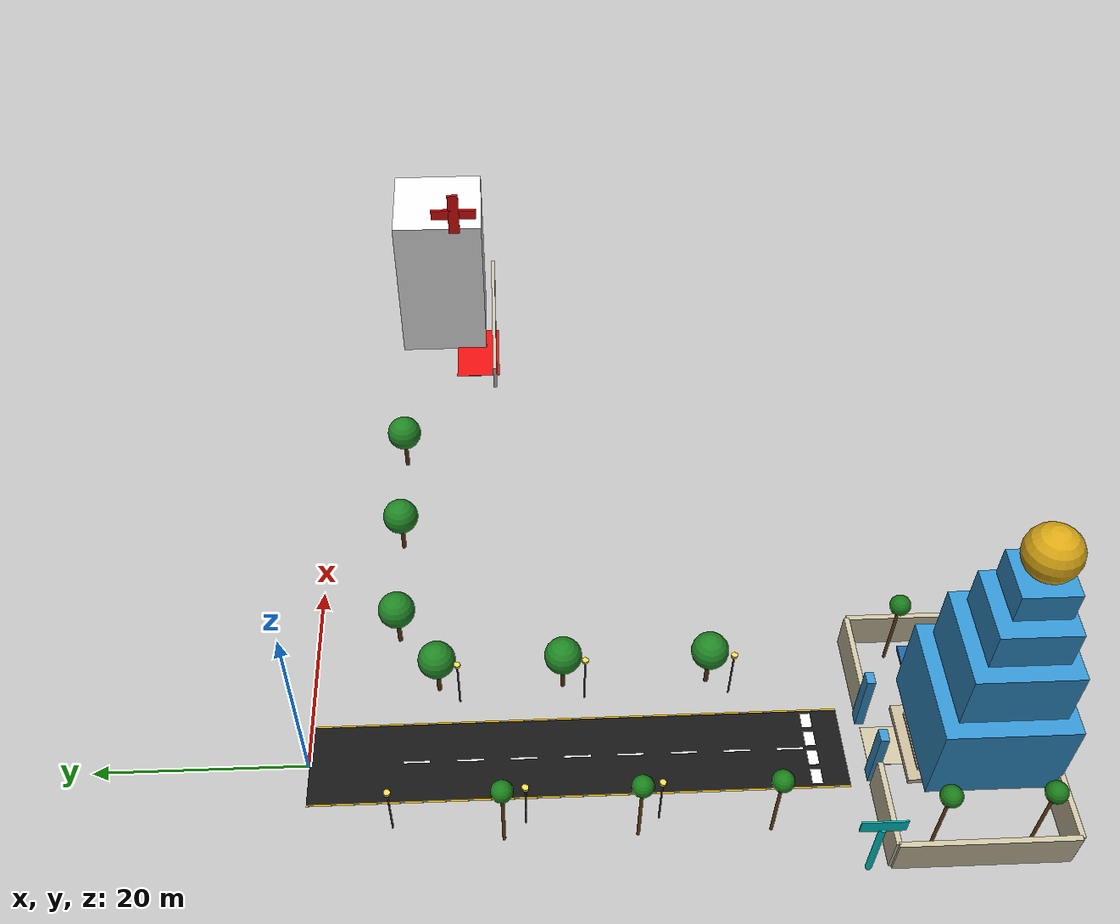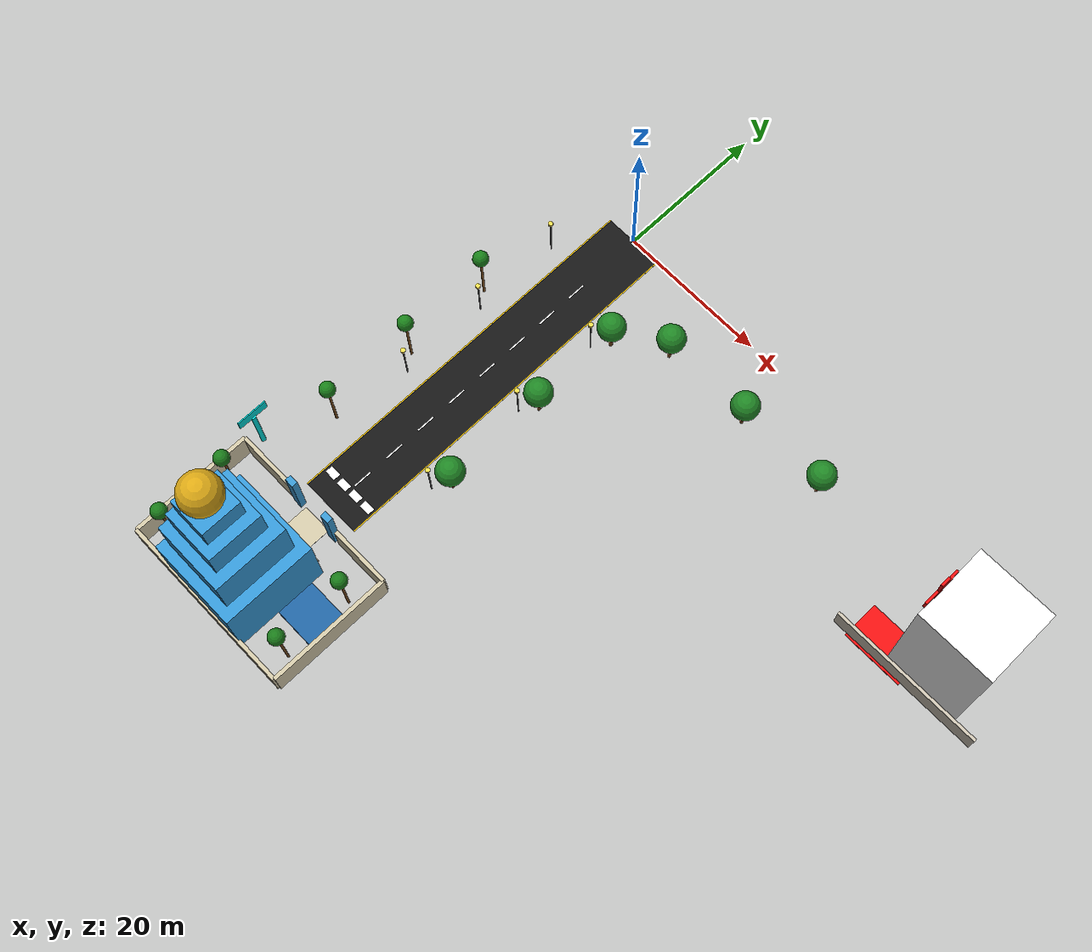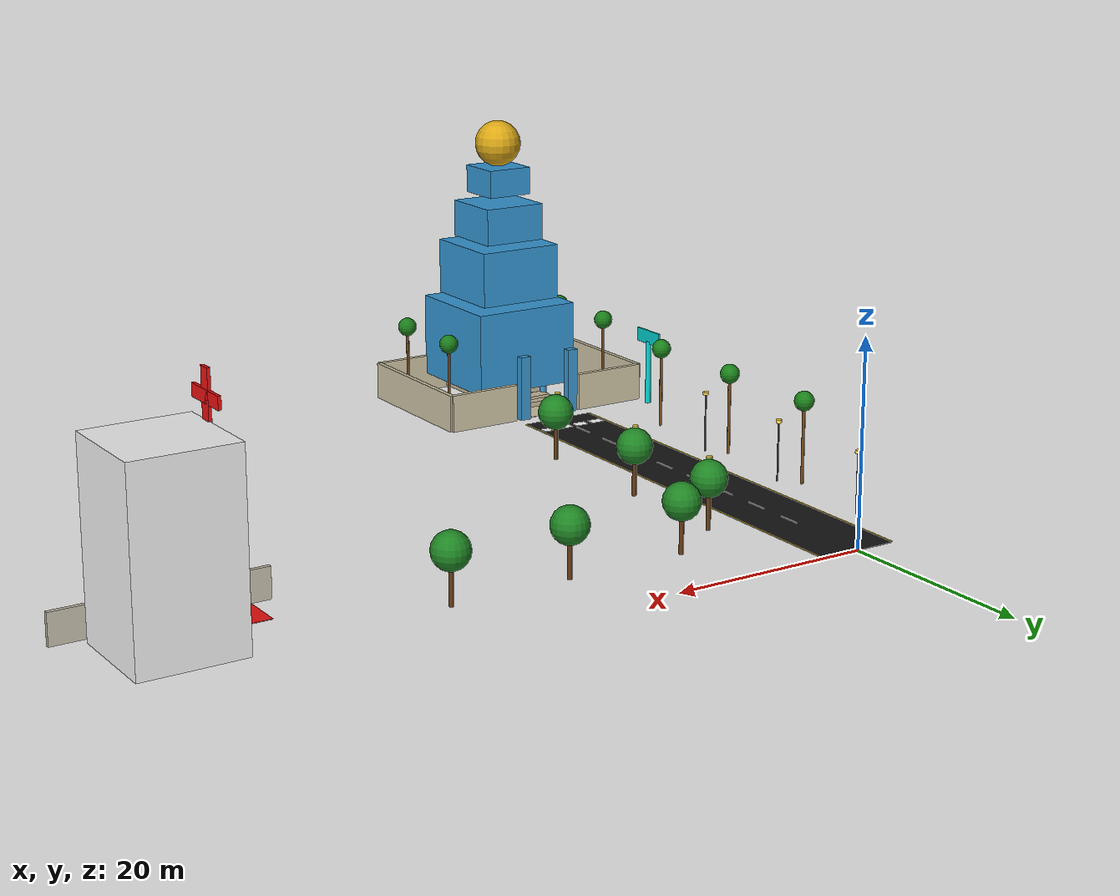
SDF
<sdf version="1.6">
 <world name="srm_campus">
  <model name="road_S">
   <static>true</static>
   <pose>0 -25 0.03 0 0 0</pose>
   <link name="link">
    <collision name="col">
     <geometry><box><size>8.0 50.0 0.06</size></box></geometry>
     <surface><friction><ode><mu>1.0</mu><mu2>1.0</mu2></ode></friction></surface>
    </collision>
    <visual name="vis">
     <geometry><box><size>8.0 50.0 0.06</size></box></geometry>
     <material><ambient>0.06 0.06 0.06 1</ambient><diffuse>0.08 0.08 0.08 1</diffuse></material>
    </visual>
   </link>
  </model>
  <model name="el_SL">
   <static>true</static>
   <pose>-4.1 -25 0.065 0 0 0</pose>
   <link name="l">
    <collision name="c"><geometry><box><size>0.15 50 0.01</size></box></geometry></collision>
    <visual name="v">
     <geometry><box><size>0.15 50 0.01</size></box></geometry>
     <material><ambient>0.95 0.75 0.0 1</ambient><diffuse>0.95 0.75 0.0 1</diffuse></material>
    </visual>
   </link>
  </model>
  <model name="el_SR">
   <static>true</static>
   <pose>4.1 -25 0.065 0 0 0</pose>
   <link name="l">
    <collision name="c"><geometry><box><size>0.15 50 0.01</size></box></geometry></collision>
    <visual name="v">
     <geometry><box><size>0.15 50 0.01</size></box></geometry>
     <material><ambient>0.95 0.75 0.0 1</ambient><diffuse>0.95 0.75 0.0 1</diffuse></material>
    </visual>
   </link>
  </model>
  <model name="ws02">
   <static>true</static>
   <pose>0 -10 0.07 0 0 0</pose>
   <link name="l">
    <collision name="c"><geometry><box><size>0.20 2.5 0.01</size></box></geometry></collision>
    <visual name="v">
     <geometry><box><size>0.20 2.5 0.01</size></box></geometry>
     <material><ambient>1 1 1 1</ambient><diffuse>1 1 1 1</diffuse></material>
    </visual>
   </link>
  </model>
  <model name="ws03">
   <static>true</static>
   <pose>0 -15 0.07 0 0 0</pose>
   <link name="l">
    <collision name="c"><geometry><box><size>0.20 2.5 0.01</size></box></geometry></collision>
    <visual name="v">
     <geometry><box><size>0.20 2.5 0.01</size></box></geometry>
     <material><ambient>1 1 1 1</ambient><diffuse>1 1 1 1</diffuse></material>
    </visual>
   </link>
  </model>
  <model name="ws04">
   <static>true</static>
   <pose>0 -20 0.07 0 0 0</pose>
   <link name="l">
    <collision name="c"><geometry><box><size>0.20 2.5 0.01</size></box></geometry></collision>
    <visual name="v">
     <geometry><box><size>0.20 2.5 0.01</size></box></geometry>
     <material><ambient>1 1 1 1</ambient><diffuse>1 1 1 1</diffuse></material>
    </visual>
   </link>
  </model>
  <model name="ws05">
   <static>true</static>
   <pose>0 -25 0.07 0 0 0</pose>
   <link name="l">
    <collision name="c"><geometry><box><size>0.20 2.5 0.01</size></box></geometry></collision>
    <visual name="v">
     <geometry><box><size>0.20 2.5 0.01</size></box></geometry>
     <material><ambient>1 1 1 1</ambient><diffuse>1 1 1 1</diffuse></material>
    </visual>
   </link>
  </model>
  <model name="ws06">
   <static>true</static>
   <pose>0 -30 0.07 0 0 0</pose>
   <link name="l">
    <collision name="c"><geometry><box><size>0.20 2.5 0.01</size></box></geometry></collision>
    <visual name="v">
     <geometry><box><size>0.20 2.5 0.01</size></box></geometry>
     <material><ambient>1 1 1 1</ambient><diffuse>1 1 1 1</diffuse></material>
    </visual>
   </link>
  </model>
  <model name="ws07">
   <static>true</static>
   <pose>0 -35 0.07 0 0 0</pose>
   <link name="l">
    <collision name="c"><geometry><box><size>0.20 2.5 0.01</size></box></geometry></collision>
    <visual name="v">
     <geometry><box><size>0.20 2.5 0.01</size></box></geometry>
     <material><ambient>1 1 1 1</ambient><diffuse>1 1 1 1</diffuse></material>
    </visual>
   </link>
  </model>
  <model name="ws08">
   <static>true</static>
   <pose>0 -40 0.07 0 0 0</pose>
   <link name="l">
    <collision name="c"><geometry><box><size>0.20 2.5 0.01</size></box></geometry></collision>
    <visual name="v">
     <geometry><box><size>0.20 2.5 0.01</size></box></geometry>
     <material><ambient>1 1 1 1</ambient><diffuse>1 1 1 1</diffuse></material>
    </visual>
   </link>
  </model>
  <model name="ws09">
   <static>true</static>
   <pose>0 -45 0.07 0 0 0</pose>
   <link name="l">
    <collision name="c"><geometry><box><size>0.20 2.5 0.01</size></box></geometry></collision>
    <visual name="v">
     <geometry><box><size>0.20 2.5 0.01</size></box></geometry>
     <material><ambient>1 1 1 1</ambient><diffuse>1 1 1 1</diffuse></material>
    </visual>
   </link>
  </model>
  <model name="zeb_tem_1">
   <static>true</static>
   <pose>-3 -47 0.07 0 0 0</pose>
   <link name="l">
    <collision name="c"><geometry><box><size>1.5 1.0 0.01</size></box></geometry></collision>
    <visual name="v">
     <geometry><box><size>1.5 1.0 0.01</size></box></geometry>
     <material><ambient>1 1 1 1</ambient><diffuse>1 1 1 1</diffuse></material>
    </visual>
   </link>
  </model>
  <model name="zeb_tem_2">
   <static>true</static>
   <pose>-1 -47 0.07 0 0 0</pose>
   <link name="l">
    <collision name="c"><geometry><box><size>1.5 1.0 0.01</size></box></geometry></collision>
    <visual name="v">
     <geometry><box><size>1.5 1.0 0.01</size></box></geometry>
     <material><ambient>1 1 1 1</ambient><diffuse>1 1 1 1</diffuse></material>
    </visual>
   </link>
  </model>
  <model name="zeb_tem_3">
   <static>true</static>
   <pose>1 -47 0.07 0 0 0</pose>
   <link name="l">
    <collision name="c"><geometry><box><size>1.5 1.0 0.01</size></box></geometry></collision>
    <visual name="v">
     <geometry><box><size>1.5 1.0 0.01</size></box></geometry>
     <material><ambient>1 1 1 1</ambient><diffuse>1 1 1 1</diffuse></material>
    </visual>
   </link>
  </model>
  <model name="zeb_tem_4">
   <static>true</static>
   <pose>3 -47 0.07 0 0 0</pose>
   <link name="l">
    <collision name="c"><geometry><box><size>1.5 1.0 0.01</size></box></geometry></collision>
    <visual name="v">
     <geometry><box><size>1.5 1.0 0.01</size></box></geometry>
     <material><ambient>1 1 1 1</ambient><diffuse>1 1 1 1</diffuse></material>
    </visual>
   </link>
  </model>
  <model name="sl_sl1">
   <static>true</static>
   <pose>-6.5  -8 3 0 0 0</pose>
   <link name="l">
    <collision name="c">
     <geometry><cylinder><radius>0.08</radius><length>6</length></cylinder></geometry>
    </collision>
    <visual name="trunk">
     <geometry><cylinder><radius>0.08</radius><length>6</length></cylinder></geometry>
     <material><ambient>0.4 0.4 0.4 1</ambient><diffuse>0.4 0.4 0.4 1</diffuse></material>
    </visual>
   </link>
  </model>
  <model name="sl_sl1h">
   <static>true</static>
   <pose>-6.5  -8 6.2 0 0 0</pose>
   <link name="l">
    <collision name="c">
     <geometry><cylinder><radius>0.3</radius><length>0.3</length></cylinder></geometry>
    </collision>
    <visual name="v">
     <geometry><cylinder><radius>0.3</radius><length>0.3</length></cylinder></geometry>
     <material><ambient>0.95 0.75 0.2 1</ambient><diffuse>1.0 0.85 0.3 1</diffuse></material>
    </visual>
   </link>
  </model>
  <model name="sl_sl2">
   <static>true</static>
   <pose>-6.5 -20 3 0 0 0</pose>
   <link name="l">
    <collision name="c">
     <geometry><cylinder><radius>0.08</radius><length>6</length></cylinder></geometry>
    </collision>
    <visual name="trunk">
     <geometry><cylinder><radius>0.08</radius><length>6</length></cylinder></geometry>
     <material><ambient>0.4 0.4 0.4 1</ambient><diffuse>0.4 0.4 0.4 1</diffuse></material>
    </visual>
   </link>
  </model>
  <model name="sl_sl2h">
   <static>true</static>
   <pose>-6.5 -20 6.2 0 0 0</pose>
   <link name="l">
    <collision name="c">
     <geometry><cylinder><radius>0.3</radius><length>0.3</length></cylinder></geometry>
    </collision>
    <visual name="v">
     <geometry><cylinder><radius>0.3</radius><length>0.3</length></cylinder></geometry>
     <material><ambient>0.95 0.75 0.2 1</ambient><diffuse>1.0 0.85 0.3 1</diffuse></material>
    </visual>
   </link>
  </model>
  <model name="sl_sl3">
   <static>true</static>
   <pose>-6.5 -32 3 0 0 0</pose>
   <link name="l">
    <collision name="c">
     <geometry><cylinder><radius>0.08</radius><length>6</length></cylinder></geometry>
    </collision>
    <visual name="trunk">
     <geometry><cylinder><radius>0.08</radius><length>6</length></cylinder></geometry>
     <material><ambient>0.4 0.4 0.4 1</ambient><diffuse>0.4 0.4 0.4 1</diffuse></material>
    </visual>
   </link>
  </model>
  <model name="sl_sl3h">
   <static>true</static>
   <pose>-6.5 -32 6.2 0 0 0</pose>
   <link name="l">
    <collision name="c">
     <geometry><cylinder><radius>0.3</radius><length>0.3</length></cylinder></geometry>
    </collision>
    <visual name="v">
     <geometry><cylinder><radius>0.3</radius><length>0.3</length></cylinder></geometry>
     <material><ambient>0.95 0.75 0.2 1</ambient><diffuse>1.0 0.85 0.3 1</diffuse></material>
    </visual>
   </link>
  </model>
  <model name="sl_sr1">
   <static>true</static>
   <pose>6.5 -14 3 0 0 0</pose>
   <link name="l">
    <collision name="c">
     <geometry><cylinder><radius>0.08</radius><length>6</length></cylinder></geometry>
    </collision>
    <visual name="trunk">
     <geometry><cylinder><radius>0.08</radius><length>6</length></cylinder></geometry>
     <material><ambient>0.4 0.4 0.4 1</ambient><diffuse>0.4 0.4 0.4 1</diffuse></material>
    </visual>
   </link>
  </model>
  <model name="sl_sr1h">
   <static>true</static>
   <pose>6.5 -14 6.2 0 0 0</pose>
   <link name="l">
    <collision name="c">
     <geometry><cylinder><radius>0.3</radius><length>0.3</length></cylinder></geometry>
    </collision>
    <visual name="v">
     <geometry><cylinder><radius>0.3</radius><length>0.3</length></cylinder></geometry>
     <material><ambient>0.95 0.75 0.2 1</ambient><diffuse>1.0 0.85 0.3 1</diffuse></material>
    </visual>
   </link>
  </model>
  <model name="sl_sr2">
   <static>true</static>
   <pose>6.5 -26 3 0 0 0</pose>
   <link name="l">
    <collision name="c">
     <geometry><cylinder><radius>0.08</radius><length>6</length></cylinder></geometry>
    </collision>
    <visual name="trunk">
     <geometry><cylinder><radius>0.08</radius><length>6</length></cylinder></geometry>
     <material><ambient>0.4 0.4 0.4 1</ambient><diffuse>0.4 0.4 0.4 1</diffuse></material>
    </visual>
   </link>
  </model>
  <model name="sl_sr2h">
   <static>true</static>
   <pose>6.5 -26 6.2 0 0 0</pose>
   <link name="l">
    <collision name="c">
     <geometry><cylinder><radius>0.3</radius><length>0.3</length></cylinder></geometry>
    </collision>
    <visual name="v">
     <geometry><cylinder><radius>0.3</radius><length>0.3</length></cylinder></geometry>
     <material><ambient>0.95 0.75 0.2 1</ambient><diffuse>1.0 0.85 0.3 1</diffuse></material>
    </visual>
   </link>
  </model>
  <model name="sl_sr3">
   <static>true</static>
   <pose>6.5 -40 3 0 0 0</pose>
   <link name="l">
    <collision name="c">
     <geometry><cylinder><radius>0.08</radius><length>6</length></cylinder></geometry>
    </collision>
    <visual name="trunk">
     <geometry><cylinder><radius>0.08</radius><length>6</length></cylinder></geometry>
     <material><ambient>0.4 0.4 0.4 1</ambient><diffuse>0.4 0.4 0.4 1</diffuse></material>
    </visual>
   </link>
  </model>
  <model name="sl_sr3h">
   <static>true</static>
   <pose>6.5 -40 6.2 0 0 0</pose>
   <link name="l">
    <collision name="c">
     <geometry><cylinder><radius>0.3</radius><length>0.3</length></cylinder></geometry>
    </collision>
    <visual name="v">
     <geometry><cylinder><radius>0.3</radius><length>0.3</length></cylinder></geometry>
     <material><ambient>0.95 0.75 0.2 1</ambient><diffuse>1.0 0.85 0.3 1</diffuse></material>
    </visual>
   </link>
  </model>
  <model name="st_eb1">
   <static>true</static>
   <pose>14 -8 2 0 0 0</pose>
   <link name="l">
    <collision name="c">
     <geometry><cylinder><radius>0.22</radius><length>4</length></cylinder></geometry>
    </collision>
    <visual name="v">
     <geometry><cylinder><radius>0.22</radius><length>4</length></cylinder></geometry>
     <material><ambient>0.38 0.22 0.08 1</ambient><diffuse>0.38 0.22 0.08 1</diffuse></material>
    </visual>
   </link>
  </model>
  <model name="st_eb1t">
   <static>true</static>
   <pose>14 -8 5 0 0 0</pose>
   <link name="l">
    <collision name="c"><geometry><sphere><radius>1.8</radius></sphere></geometry></collision>
    <visual name="v">
     <geometry><sphere><radius>1.8</radius></sphere></geometry>
     <material><ambient>0.10 0.48 0.12 1</ambient><diffuse>0.12 0.52 0.14 1</diffuse></material>
    </visual>
   </link>
  </model>
  <model name="st_eb2">
   <static>true</static>
   <pose>26 -8 2 0 0 0</pose>
   <link name="l">
    <collision name="c">
     <geometry><cylinder><radius>0.22</radius><length>4</length></cylinder></geometry>
    </collision>
    <visual name="v">
     <geometry><cylinder><radius>0.22</radius><length>4</length></cylinder></geometry>
     <material><ambient>0.38 0.22 0.08 1</ambient><diffuse>0.38 0.22 0.08 1</diffuse></material>
    </visual>
   </link>
  </model>
  <model name="st_eb2t">
   <static>true</static>
   <pose>26 -8 5 0 0 0</pose>
   <link name="l">
    <collision name="c"><geometry><sphere><radius>1.8</radius></sphere></geometry></collision>
    <visual name="v">
     <geometry><sphere><radius>1.8</radius></sphere></geometry>
     <material><ambient>0.10 0.48 0.12 1</ambient><diffuse>0.12 0.52 0.14 1</diffuse></material>
    </visual>
   </link>
  </model>
  <model name="st_eb3">
   <static>true</static>
   <pose>38 -8 2 0 0 0</pose>
   <link name="l">
    <collision name="c">
     <geometry><cylinder><radius>0.22</radius><length>4</length></cylinder></geometry>
    </collision>
    <visual name="v">
     <geometry><cylinder><radius>0.22</radius><length>4</length></cylinder></geometry>
     <material><ambient>0.38 0.22 0.08 1</ambient><diffuse>0.38 0.22 0.08 1</diffuse></material>
    </visual>
   </link>
  </model>
  <model name="st_eb3t">
   <static>true</static>
   <pose>38 -8 5 0 0 0</pose>
   <link name="l">
    <collision name="c"><geometry><sphere><radius>1.8</radius></sphere></geometry></collision>
    <visual name="v">
     <geometry><sphere><radius>1.8</radius></sphere></geometry>
     <material><ambient>0.10 0.48 0.12 1</ambient><diffuse>0.12 0.52 0.14 1</diffuse></material>
    </visual>
   </link>
  </model>
  <model name="pt_sl2">
   <static>true</static>
   <pose>-8 -18 4 0 0 0</pose>
   <link name="l">
    <collision name="c">
     <geometry><cylinder><radius>0.15</radius><length>8</length></cylinder></geometry>
    </collision>
    <visual name="v">
     <geometry><cylinder><radius>0.15</radius><length>8</length></cylinder></geometry>
     <material><ambient>0.45 0.28 0.10 1</ambient><diffuse>0.45 0.28 0.10 1</diffuse></material>
    </visual>
   </link>
  </model>
  <model name="pt_sl2t">
   <static>true</static>
   <pose>-8 -18 8.5 0 0 0</pose>
   <link name="l">
    <collision name="c"><geometry><sphere><radius>1.0</radius></sphere></geometry></collision>
    <visual name="v">
     <geometry><sphere><radius>1.0</radius></sphere></geometry>
     <material><ambient>0.08 0.45 0.08 1</ambient><diffuse>0.10 0.50 0.10 1</diffuse></material>
    </visual>
   </link>
  </model>
  <model name="pt_sl3">
   <static>true</static>
   <pose>-8 -30 4 0 0 0</pose>
   <link name="l">
    <collision name="c">
     <geometry><cylinder><radius>0.15</radius><length>8</length></cylinder></geometry>
    </collision>
    <visual name="v">
     <geometry><cylinder><radius>0.15</radius><length>8</length></cylinder></geometry>
     <material><ambient>0.45 0.28 0.10 1</ambient><diffuse>0.45 0.28 0.10 1</diffuse></material>
    </visual>
   </link>
  </model>
  <model name="pt_sl3t">
   <static>true</static>
   <pose>-8 -30 8.5 0 0 0</pose>
   <link name="l">
    <collision name="c"><geometry><sphere><radius>1.0</radius></sphere></geometry></collision>
    <visual name="v">
     <geometry><sphere><radius>1.0</radius></sphere></geometry>
     <material><ambient>0.08 0.45 0.08 1</ambient><diffuse>0.10 0.50 0.10 1</diffuse></material>
    </visual>
   </link>
  </model>
  <model name="pt_sl4">
   <static>true</static>
   <pose>-8 -42 4 0 0 0</pose>
   <link name="l">
    <collision name="c">
     <geometry><cylinder><radius>0.15</radius><length>8</length></cylinder></geometry>
    </collision>
    <visual name="v">
     <geometry><cylinder><radius>0.15</radius><length>8</length></cylinder></geometry>
     <material><ambient>0.45 0.28 0.10 1</ambient><diffuse>0.45 0.28 0.10 1</diffuse></material>
    </visual>
   </link>
  </model>
  <model name="pt_sl4t">
   <static>true</static>
   <pose>-8 -42 8.5 0 0 0</pose>
   <link name="l">
    <collision name="c"><geometry><sphere><radius>1.0</radius></sphere></geometry></collision>
    <visual name="v">
     <geometry><sphere><radius>1.0</radius></sphere></geometry>
     <material><ambient>0.08 0.45 0.08 1</ambient><diffuse>0.10 0.50 0.10 1</diffuse></material>
    </visual>
   </link>
  </model>
  <model name="st_sr1">
   <static>true</static>
   <pose>8 -12 2 0 0 0</pose>
   <link name="l">
    <collision name="c">
     <geometry><cylinder><radius>0.22</radius><length>4</length></cylinder></geometry>
    </collision>
    <visual name="v">
     <geometry><cylinder><radius>0.22</radius><length>4</length></cylinder></geometry>
     <material><ambient>0.38 0.22 0.08 1</ambient><diffuse>0.38 0.22 0.08 1</diffuse></material>
    </visual>
   </link>
  </model>
  <model name="st_sr1t">
   <static>true</static>
   <pose>8 -12 5 0 0 0</pose>
   <link name="l">
    <collision name="c"><geometry><sphere><radius>1.8</radius></sphere></geometry></collision>
    <visual name="v">
     <geometry><sphere><radius>1.8</radius></sphere></geometry>
     <material><ambient>0.10 0.48 0.12 1</ambient><diffuse>0.12 0.52 0.14 1</diffuse></material>
    </visual>
   </link>
  </model>
  <model name="st_sr2">
   <static>true</static>
   <pose>8 -24 2 0 0 0</pose>
   <link name="l">
    <collision name="c">
     <geometry><cylinder><radius>0.22</radius><length>4</length></cylinder></geometry>
    </collision>
    <visual name="v">
     <geometry><cylinder><radius>0.22</radius><length>4</length></cylinder></geometry>
     <material><ambient>0.38 0.22 0.08 1</ambient><diffuse>0.38 0.22 0.08 1</diffuse></material>
    </visual>
   </link>
  </model>
  <model name="st_sr2t">
   <static>true</static>
   <pose>8 -24 5 0 0 0</pose>
   <link name="l">
    <collision name="c"><geometry><sphere><radius>1.8</radius></sphere></geometry></collision>
    <visual name="v">
     <geometry><sphere><radius>1.8</radius></sphere></geometry>
     <material><ambient>0.10 0.48 0.12 1</ambient><diffuse>0.12 0.52 0.14 1</diffuse></material>
    </visual>
   </link>
  </model>
  <model name="st_sr3">
   <static>true</static>
   <pose>8 -38 2 0 0 0</pose>
   <link name="l">
    <collision name="c">
     <geometry><cylinder><radius>0.22</radius><length>4</length></cylinder></geometry>
    </collision>
    <visual name="v">
     <geometry><cylinder><radius>0.22</radius><length>4</length></cylinder></geometry>
     <material><ambient>0.38 0.22 0.08 1</ambient><diffuse>0.38 0.22 0.08 1</diffuse></material>
    </visual>
   </link>
  </model>
  <model name="st_sr3t">
   <static>true</static>
   <pose>8 -38 5 0 0 0</pose>
   <link name="l">
    <collision name="c"><geometry><sphere><radius>1.8</radius></sphere></geometry></collision>
    <visual name="v">
     <geometry><sphere><radius>1.8</radius></sphere></geometry>
     <material><ambient>0.10 0.48 0.12 1</ambient><diffuse>0.12 0.52 0.14 1</diffuse></material>
    </visual>
   </link>
  </model>
  <model name="hosp_wing_s">
   <static>true</static>
   <pose>62 -12 9 0 0 0</pose>
   <link name="link">
    <collision name="col"><geometry><box><size>10 10 18</size></box></geometry></collision>
    <visual name="vis">
     <geometry><box><size>10 10 18</size></box></geometry>
     <material><ambient>0.93 0.93 0.93 1</ambient><diffuse>0.95 0.95 0.95 1</diffuse></material>
    </visual>
   </link>
  </model>
  <model name="rc_h">
   <static>true</static>
   <pose>57 -14 20 0 0 0</pose>
   <link name="l">
    <collision name="c"><geometry><box><size>0.3 5 1.2</size></box></geometry></collision>
    <visual name="v">
     <geometry><box><size>0.3 5 1.2</size></box></geometry>
     <material><ambient>0.92 0.06 0.06 1</ambient><diffuse>0.92 0.06 0.06 1</diffuse></material>
    </visual>
   </link>
  </model>
  <model name="rc_v">
   <static>true</static>
   <pose>57 -14 20 0 0 0</pose>
   <link name="l">
    <collision name="c"><geometry><box><size>0.3 1.2 5</size></box></geometry></collision>
    <visual name="v">
     <geometry><box><size>0.3 1.2 5</size></box></geometry>
     <material><ambient>0.92 0.06 0.06 1</ambient><diffuse>0.92 0.06 0.06 1</diffuse></material>
    </visual>
   </link>
  </model>
  <model name="amb_bay">
   <static>true</static>
   <pose>56 -16 0.04 0 0 0</pose>
   <link name="l">
    <collision name="c"><geometry><box><size>8 5 0.06</size></box></geometry></collision>
    <visual name="v">
     <geometry><box><size>8 5 0.06</size></box></geometry>
     <material><ambient>0.92 0.06 0.06 1</ambient><diffuse>0.92 0.06 0.06 1</diffuse></material>
    </visual>
   </link>
  </model>
  <model name="hbw_s">
   <static>true</static>
   <pose>60 -18 1.5 0 0 0</pose>
   <link name="l">
    <collision name="c"><geometry><box><size>20 0.4 3</size></box></geometry></collision>
    <visual name="v">
     <geometry><box><size>20 0.4 3</size></box></geometry>
     <material><ambient>0.75 0.72 0.65 1</ambient><diffuse>0.78 0.75 0.68 1</diffuse></material>
    </visual>
   </link>
  </model>
  <model name="tw_nl">
   <static>true</static>
   <pose>-8 -52 2 0 0 0</pose>
   <link name="l">
    <collision name="c"><geometry><box><size>8 0.5 4</size></box></geometry></collision>
    <visual name="v">
     <geometry><box><size>8 0.5 4</size></box></geometry>
     <material><ambient>0.78 0.74 0.62 1</ambient><diffuse>0.80 0.76 0.64 1</diffuse></material>
    </visual>
   </link>
  </model>
  <model name="tw_nr">
   <static>true</static>
   <pose>8 -52 2 0 0 0</pose>
   <link name="l">
    <collision name="c"><geometry><box><size>8 0.5 4</size></box></geometry></collision>
    <visual name="v">
     <geometry><box><size>8 0.5 4</size></box></geometry>
     <material><ambient>0.78 0.74 0.62 1</ambient><diffuse>0.80 0.76 0.64 1</diffuse></material>
    </visual>
   </link>
  </model>
  <model name="tw_e">
   <static>true</static>
   <pose>12 -60 2 0 0 0</pose>
   <link name="l">
    <collision name="c"><geometry><box><size>0.5 16 4</size></box></geometry></collision>
    <visual name="v">
     <geometry><box><size>0.5 16 4</size></box></geometry>
     <material><ambient>0.78 0.74 0.62 1</ambient><diffuse>0.80 0.76 0.64 1</diffuse></material>
    </visual>
   </link>
  </model>
  <model name="tw_w">
   <static>true</static>
   <pose>-12 -60 2 0 0 0</pose>
   <link name="l">
    <collision name="c"><geometry><box><size>0.5 16 4</size></box></geometry></collision>
    <visual name="v">
     <geometry><box><size>0.5 16 4</size></box></geometry>
     <material><ambient>0.78 0.74 0.62 1</ambient><diffuse>0.80 0.76 0.64 1</diffuse></material>
    </visual>
   </link>
  </model>
  <model name="tw_s">
   <static>true</static>
   <pose>0 -68 2 0 0 0</pose>
   <link name="l">
    <collision name="c"><geometry><box><size>24 0.5 4</size></box></geometry></collision>
    <visual name="v">
     <geometry><box><size>24 0.5 4</size></box></geometry>
     <material><ambient>0.78 0.74 0.62 1</ambient><diffuse>0.80 0.76 0.64 1</diffuse></material>
    </visual>
   </link>
  </model>
  <model name="tgp_l">
   <static>true</static>
   <pose>-3 -52 3.5 0 0 0</pose>
   <link name="l">
    <collision name="c"><geometry><box><size>1.2 0.8 7</size></box></geometry></collision>
    <visual name="v">
     <geometry><box><size>1.2 0.8 7</size></box></geometry>
     <material><ambient>0.22 0.58 0.80 1</ambient><diffuse>0.22 0.58 0.80 1</diffuse></material>
    </visual>
   </link>
  </model>
  <model name="tgp_r">
   <static>true</static>
   <pose>3 -52 3.5 0 0 0</pose>
   <link name="l">
    <collision name="c"><geometry><box><size>1.2 0.8 7</size></box></geometry></collision>
    <visual name="v">
     <geometry><box><size>1.2 0.8 7</size></box></geometry>
     <material><ambient>0.22 0.58 0.80 1</ambient><diffuse>0.22 0.58 0.80 1</diffuse></material>
    </visual>
   </link>
  </model>
  <model name="temple_path">
   <static>true</static>
   <pose>0 -54 0.04 0 0 0</pose>
   <link name="link">
    <collision name="col"><geometry><box><size>4 4 0.06</size></box></geometry></collision>
    <visual name="vis">
     <geometry><box><size>4 4 0.06</size></box></geometry>
     <material><ambient>0.78 0.74 0.62 1</ambient><diffuse>0.80 0.76 0.64 1</diffuse></material>
    </visual>
   </link>
  </model>
  <model name="temple_steps1">
   <static>true</static>
   <pose>0 -56 0.3 0 0 0</pose>
   <link name="l">
    <collision name="c"><geometry><box><size>8 1.5 0.6</size></box></geometry></collision>
    <visual name="v">
     <geometry><box><size>8 1.5 0.6</size></box></geometry>
     <material><ambient>0.75 0.70 0.58 1</ambient><diffuse>0.77 0.72 0.60 1</diffuse></material>
    </visual>
   </link>
  </model>
  <model name="temple_steps2">
   <static>true</static>
   <pose>0 -57 0.6 0 0 0</pose>
   <link name="l">
    <collision name="c"><geometry><box><size>6 1.5 0.6</size></box></geometry></collision>
    <visual name="v">
     <geometry><box><size>6 1.5 0.6</size></box></geometry>
     <material><ambient>0.75 0.70 0.58 1</ambient><diffuse>0.77 0.72 0.60 1</diffuse></material>
    </visual>
   </link>
  </model>
  <model name="tep1">
   <static>true</static>
   <pose>-3 -57.5 3 0 0 0</pose>
   <link name="l">
    <collision name="c">
     <geometry><cylinder><radius>0.35</radius><length>6</length></cylinder></geometry>
    </collision>
    <visual name="v">
     <geometry><cylinder><radius>0.35</radius><length>6</length></cylinder></geometry>
     <material><ambient>0.22 0.58 0.80 1</ambient><diffuse>0.22 0.58 0.80 1</diffuse></material>
    </visual>
   </link>
  </model>
  <model name="tep2">
   <static>true</static>
   <pose>3 -57.5 3 0 0 0</pose>
   <link name="l">
    <collision name="c">
     <geometry><cylinder><radius>0.35</radius><length>6</length></cylinder></geometry>
    </collision>
    <visual name="v">
     <geometry><cylinder><radius>0.35</radius><length>6</length></cylinder></geometry>
     <material><ambient>0.22 0.58 0.80 1</ambient><diffuse>0.22 0.58 0.80 1</diffuse></material>
    </visual>
   </link>
  </model>
  <model name="tep3">
   <static>true</static>
   <pose>-3 -59.5 3 0 0 0</pose>
   <link name="l">
    <collision name="c">
     <geometry><cylinder><radius>0.35</radius><length>6</length></cylinder></geometry>
    </collision>
    <visual name="v">
     <geometry><cylinder><radius>0.35</radius><length>6</length></cylinder></geometry>
     <material><ambient>0.22 0.58 0.80 1</ambient><diffuse>0.22 0.58 0.80 1</diffuse></material>
    </visual>
   </link>
  </model>
  <model name="tep4">
   <static>true</static>
   <pose>3 -59.5 3 0 0 0</pose>
   <link name="l">
    <collision name="c">
     <geometry><cylinder><radius>0.35</radius><length>6</length></cylinder></geometry>
    </collision>
    <visual name="v">
     <geometry><cylinder><radius>0.35</radius><length>6</length></cylinder></geometry>
     <material><ambient>0.22 0.58 0.80 1</ambient><diffuse>0.22 0.58 0.80 1</diffuse></material>
    </visual>
   </link>
  </model>
  <model name="gop_t1">
   <static>true</static>
   <pose>0 -62 6.5 0 0 0</pose>
   <link name="link">
    <collision name="col"><geometry><box><size>12 12 9</size></box></geometry></collision>
    <visual name="vis">
     <geometry><box><size>12 12 9</size></box></geometry>
     <material><ambient>0.18 0.55 0.78 1</ambient><diffuse>0.20 0.58 0.82 1</diffuse></material>
    </visual>
   </link>
  </model>
  <model name="gop_t2">
   <static>true</static>
   <pose>0 -62 14.5 0 0 0</pose>
   <link name="link">
    <collision name="col"><geometry><box><size>9.5 9.5 6</size></box></geometry></collision>
    <visual name="vis">
     <geometry><box><size>9.5 9.5 6</size></box></geometry>
     <material><ambient>0.18 0.55 0.78 1</ambient><diffuse>0.20 0.58 0.82 1</diffuse></material>
    </visual>
   </link>
  </model>
  <model name="gop_t3">
   <static>true</static>
   <pose>0 -62 20 0 0 0</pose>
   <link name="link">
    <collision name="col"><geometry><box><size>7 7 4</size></box></geometry></collision>
    <visual name="vis">
     <geometry><box><size>7 7 4</size></box></geometry>
     <material><ambient>0.18 0.55 0.78 1</ambient><diffuse>0.20 0.58 0.82 1</diffuse></material>
    </visual>
   </link>
  </model>
  <model name="gop_t4">
   <static>true</static>
   <pose>0 -62 24.5 0 0 0</pose>
   <link name="link">
    <collision name="col"><geometry><box><size>5 5 3</size></box></geometry></collision>
    <visual name="vis">
     <geometry><box><size>5 5 3</size></box></geometry>
     <material><ambient>0.18 0.55 0.78 1</ambient><diffuse>0.20 0.58 0.82 1</diffuse></material>
    </visual>
   </link>
  </model>
  <model name="gop_kalasam">
   <static>true</static>
   <pose>0 -62 28.5 0 0 0</pose>
   <link name="link">
    <collision name="col"><geometry><sphere><radius>2.5</radius></sphere></geometry></collision>
    <visual name="vis">
     <geometry><sphere><radius>2.5</radius></sphere></geometry>
     <material><ambient>0.80 0.60 0.06 1</ambient><diffuse>0.85 0.65 0.08 1</diffuse></material>
    </visual>
   </link>
  </model>
  <model name="temple_sanctum">
   <static>true</static>
   <pose>0 -63 3 0 0 0</pose>
   <link name="link">
    <collision name="col"><geometry><box><size>8 8 5</size></box></geometry></collision>
    <visual name="vis">
     <geometry><box><size>8 8 5</size></box></geometry>
     <material><ambient>0.75 0.70 0.58 1</ambient><diffuse>0.77 0.72 0.60 1</diffuse></material>
    </visual>
   </link>
  </model>
  <model name="temple_tank">
   <static>true</static>
   <pose>8 -60 0.05 0 0 0</pose>
   <link name="link">
    <collision name="col"><geometry><box><size>6 5 0.4</size></box></geometry></collision>
    <visual name="vis">
     <geometry><box><size>6 5 0.4</size></box></geometry>
     <material><ambient>0.10 0.35 0.58 1</ambient><diffuse>0.12 0.38 0.62 1</diffuse></material>
    </visual>
   </link>
  </model>
  <model name="tcp1">
   <static>true</static>
   <pose>-10 -56 4 0 0 0</pose>
   <link name="l">
    <collision name="c">
     <geometry><cylinder><radius>0.15</radius><length>8</length></cylinder></geometry>
    </collision>
    <visual name="v">
     <geometry><cylinder><radius>0.15</radius><length>8</length></cylinder></geometry>
     <material><ambient>0.42 0.26 0.10 1</ambient><diffuse>0.42 0.26 0.10 1</diffuse></material>
    </visual>
   </link>
  </model>
  <model name="tcp1t">
   <static>true</static>
   <pose>-10 -56 8.5 0 0 0</pose>
   <link name="l">
    <collision name="c"><geometry><sphere><radius>1.0</radius></sphere></geometry></collision>
    <visual name="v">
     <geometry><sphere><radius>1.0</radius></sphere></geometry>
     <material><ambient>0.08 0.42 0.08 1</ambient><diffuse>0.10 0.48 0.10 1</diffuse></material>
    </visual>
   </link>
  </model>
  <model name="tcp2">
   <static>true</static>
   <pose>10 -56 4 0 0 0</pose>
   <link name="l">
    <collision name="c">
     <geometry><cylinder><radius>0.15</radius><length>8</length></cylinder></geometry>
    </collision>
    <visual name="v">
     <geometry><cylinder><radius>0.15</radius><length>8</length></cylinder></geometry>
     <material><ambient>0.42 0.26 0.10 1</ambient><diffuse>0.42 0.26 0.10 1</diffuse></material>
    </visual>
   </link>
  </model>
  <model name="tcp2t">
   <static>true</static>
   <pose>10 -56 8.5 0 0 0</pose>
   <link name="l">
    <collision name="c"><geometry><sphere><radius>1.0</radius></sphere></geometry></collision>
    <visual name="v">
     <geometry><sphere><radius>1.0</radius></sphere></geometry>
     <material><ambient>0.08 0.42 0.08 1</ambient><diffuse>0.10 0.48 0.10 1</diffuse></material>
    </visual>
   </link>
  </model>
  <model name="tcp3">
   <static>true</static>
   <pose>-10 -65 4 0 0 0</pose>
   <link name="l">
    <collision name="c">
     <geometry><cylinder><radius>0.15</radius><length>8</length></cylinder></geometry>
    </collision>
    <visual name="v">
     <geometry><cylinder><radius>0.15</radius><length>8</length></cylinder></geometry>
     <material><ambient>0.42 0.26 0.10 1</ambient><diffuse>0.42 0.26 0.10 1</diffuse></material>
    </visual>
   </link>
  </model>
  <model name="tcp3t">
   <static>true</static>
   <pose>-10 -65 8.5 0 0 0</pose>
   <link name="l">
    <collision name="c"><geometry><sphere><radius>1.0</radius></sphere></geometry></collision>
    <visual name="v">
     <geometry><sphere><radius>1.0</radius></sphere></geometry>
     <material><ambient>0.08 0.42 0.08 1</ambient><diffuse>0.10 0.48 0.10 1</diffuse></material>
    </visual>
   </link>
  </model>
  <model name="tcp4">
   <static>true</static>
   <pose>10 -65 4 0 0 0</pose>
   <link name="l">
    <collision name="c">
     <geometry><cylinder><radius>0.15</radius><length>8</length></cylinder></geometry>
    </collision>
    <visual name="v">
     <geometry><cylinder><radius>0.15</radius><length>8</length></cylinder></geometry>
     <material><ambient>0.42 0.26 0.10 1</ambient><diffuse>0.42 0.26 0.10 1</diffuse></material>
    </visual>
   </link>
  </model>
  <model name="tcp4t">
   <static>true</static>
   <pose>10 -65 8.5 0 0 0</pose>
   <link name="l">
    <collision name="c"><geometry><sphere><radius>1.0</radius></sphere></geometry></collision>
    <visual name="v">
     <geometry><sphere><radius>1.0</radius></sphere></geometry>
     <material><ambient>0.08 0.42 0.08 1</ambient><diffuse>0.10 0.48 0.10 1</diffuse></material>
    </visual>
   </link>
  </model>
  <model name="marker_temple">
   <static>true</static>
   <pose>-12 -50 3.5 0 0 0</pose>
   <link name="link">
    <collision name="col">
     <geometry><cylinder><radius>0.3</radius><length>7</length></cylinder></geometry>
    </collision>
    <visual name="vis">
     <geometry><cylinder><radius>0.3</radius><length>7</length></cylinder></geometry>
     <material><ambient>0.0 0.80 0.80 1</ambient><diffuse>0.0 0.80 0.80 1</diffuse></material>
    </visual>
   </link>
  </model>
  <model name="temple_sign">
   <static>true</static>
   <pose>-12 -50 7.5 0 0 0</pose>
   <link name="l">
    <collision name="c"><geometry><box><size>0.15 4 1.5</size></box></geometry></collision>
    <visual name="v">
     <geometry><box><size>0.15 4 1.5</size></box></geometry>
     <material><ambient>0.0 0.80 0.80 1</ambient><diffuse>0.0 0.80 0.80 1</diffuse></material>
    </visual>
   </link>
  </model>
 </world>
</sdf>
